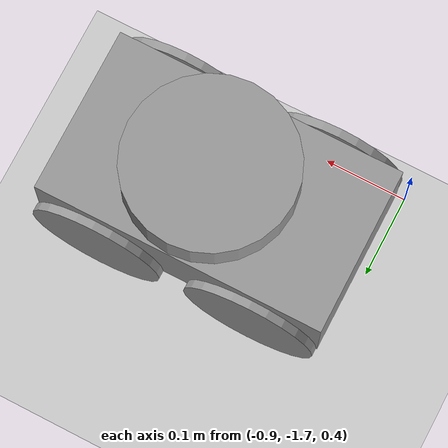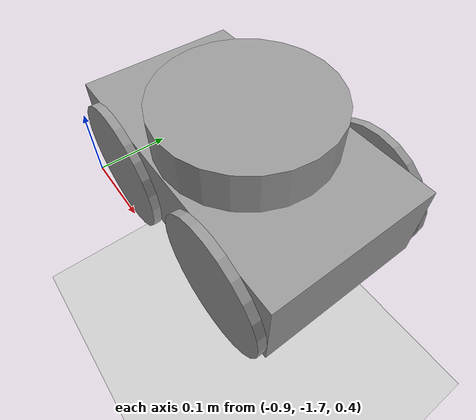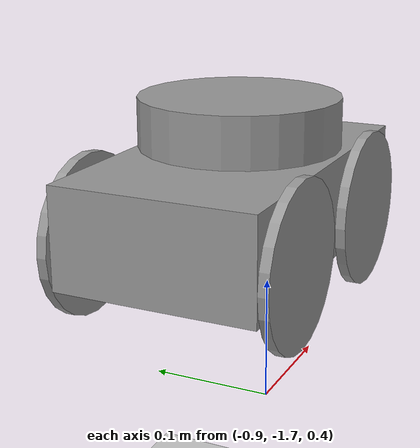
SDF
<sdf version="1.6">
 <world name="default">
  <model name="ground_plane">
   <static>1</static>
   <link name="link">
    <collision name="collision">
     <geometry><plane><normal>0 0 1</normal><size>100 100</size></plane></geometry>
     <surface><friction><ode><mu>100</mu><mu2>50</mu2></ode></friction></surface>
    </collision>
    <visual name="visual">
     <cast_shadows>0</cast_shadows>
     <geometry><plane><normal>0 0 1</normal><size>100 100</size></plane></geometry>
     <material>
      <script><uri>file://media/materials/scripts/gazebo.material</uri><name>Gazebo/Grey</name></script>
     </material>
    </visual>
   </link>
  </model>
  <model name="Recon01">
   <link name="link_0">
    <pose>-0.001667 -0.001667 0 0 -0 0</pose>
    <inertial>
     <mass>1</mass>
     <inertia>
      <ixx>0.166667</ixx>
      <ixy>0</ixy>
      <ixz>0</ixz>
      <iyy>0.166667</iyy>
      <iyz>0</iyz>
      <izz>0.166667</izz>
     </inertia>
    </inertial>
    <visual name="visual">
     <geometry><box><size>0.35 0.2 0.1</size></box></geometry>
     <material>
      <lighting>1</lighting>
      <script><uri>file://media/materials/scripts/gazebo.material</uri><name>Gazebo/Grey</name></script>
      <ambient>0.3 0.3 0.3 1</ambient>
      <diffuse>0.7 0.7 0.7 1</diffuse>
      <specular>0.01 0.01 0.01 1</specular>
      <emissive>0 0 0 1</emissive>
      <shader type="vertex"><normal_map>__default__</normal_map></shader>
     </material>
    </visual>
    <collision name="collision">
     <geometry><box><size>0.35 0.2 0.1</size></box></geometry>
     <surface>
      <friction>
       <ode><mu>1</mu><mu2>1</mu2><fdir1>0 0 0</fdir1><slip1>0</slip1><slip2>0</slip2></ode>
       <torsional>
        <coefficient>1</coefficient>
        <patch_radius>0</patch_radius>
        <surface_radius>0</surface_radius>
        <use_patch_radius>1</use_patch_radius>
        <ode><slip>0</slip></ode>
       </torsional>
      </friction>
      <bounce><restitution_coefficient>0</restitution_coefficient><threshold>1e+06</threshold></bounce>
      <contact>
       <collide_without_contact>0</collide_without_contact>
       <collide_without_contact_bitmask>1</collide_without_contact_bitmask>
       <collide_bitmask>1</collide_bitmask>
       <ode>
        <soft_cfm>0</soft_cfm>
        <soft_erp>0.2</soft_erp>
        <kp>1e+13</kp>
        <kd>1</kd>
        <max_vel>0.01</max_vel>
        <min_depth>0</min_depth>
       </ode>
       <bullet>
        <split_impulse>1</split_impulse>
        <split_impulse_penetration_threshold>-0.01</split_impulse_penetration_threshold>
        <soft_cfm>0</soft_cfm>
        <soft_erp>0.2</soft_erp>
        <kp>1e+13</kp>
        <kd>1</kd>
       </bullet>
      </contact>
     </surface>
    </collision>
   </link>
   <link name="link_1">
    <pose>-0.096667 0.108333 -0.02 1.5708 -0 0</pose>
    <inertial>
     <mass>1</mass>
     <inertia><ixx>0.145833</ixx><ixy>0</ixy><ixz>0</ixz><iyy>0.145833</iyy><iyz>0</iyz><izz>0.125</izz></inertia>
    </inertial>
    <visual name="visual">
     <geometry><cylinder><radius>0.08</radius><length>0.01</length></cylinder></geometry>
     <material>
      <lighting>1</lighting>
      <script><uri>file://media/materials/scripts/gazebo.material</uri><name>Gazebo/Grey</name></script>
      <ambient>0.3 0.3 0.3 1</ambient>
      <diffuse>0.7 0.7 0.7 1</diffuse>
      <specular>0.01 0.01 0.01 1</specular>
      <emissive>0 0 0 1</emissive>
      <shader type="vertex"><normal_map>__default__</normal_map></shader>
     </material>
    </visual>
    <collision name="collision">
     <geometry><cylinder><radius>0.08</radius><length>0.01</length></cylinder></geometry>
     <surface>
      <friction>
       <ode><mu>1</mu><mu2>1</mu2><fdir1>0 0 0</fdir1><slip1>0</slip1><slip2>0</slip2></ode>
       <torsional>
        <coefficient>1</coefficient>
        <patch_radius>0</patch_radius>
        <surface_radius>0</surface_radius>
        <use_patch_radius>1</use_patch_radius>
        <ode><slip>0</slip></ode>
       </torsional>
      </friction>
      <bounce><restitution_coefficient>0</restitution_coefficient><threshold>1e+06</threshold></bounce>
      <contact>
       <collide_without_contact>0</collide_without_contact>
       <collide_without_contact_bitmask>1</collide_without_contact_bitmask>
       <collide_bitmask>1</collide_bitmask>
       <ode>
        <soft_cfm>0</soft_cfm>
        <soft_erp>0.2</soft_erp>
        <kp>1e+13</kp>
        <kd>1</kd>
        <max_vel>0.01</max_vel>
        <min_depth>0</min_depth>
       </ode>
       <bullet>
        <split_impulse>1</split_impulse>
        <split_impulse_penetration_threshold>-0.01</split_impulse_penetration_threshold>
        <soft_cfm>0</soft_cfm>
        <soft_erp>0.2</soft_erp>
        <kp>1e+13</kp>
        <kd>1</kd>
       </bullet>
      </contact>
     </surface>
    </collision>
   </link>
   <link name="link_1_clone">
    <pose>0.093333 0.108333 -0.02 1.5708 -0 0</pose>
    <inertial>
     <mass>1</mass>
     <inertia><ixx>0.145833</ixx><ixy>0</ixy><ixz>0</ixz><iyy>0.145833</iyy><iyz>0</iyz><izz>0.125</izz></inertia>
    </inertial>
    <visual name="visual">
     <geometry><cylinder><radius>0.08</radius><length>0.01</length></cylinder></geometry>
     <material>
      <lighting>1</lighting>
      <script><uri>file://media/materials/scripts/gazebo.material</uri><name>Gazebo/Grey</name></script>
      <ambient>0.3 0.3 0.3 1</ambient>
      <diffuse>0.7 0.7 0.7 1</diffuse>
      <specular>0.01 0.01 0.01 1</specular>
      <emissive>0 0 0 1</emissive>
      <shader type="vertex"><normal_map>__default__</normal_map></shader>
     </material>
    </visual>
    <collision name="collision">
     <geometry><cylinder><radius>0.08</radius><length>0.01</length></cylinder></geometry>
     <surface>
      <friction>
       <ode><mu>1</mu><mu2>1</mu2><fdir1>0 0 0</fdir1><slip1>0</slip1><slip2>0</slip2></ode>
       <torsional>
        <coefficient>1</coefficient>
        <patch_radius>0</patch_radius>
        <surface_radius>0</surface_radius>
        <use_patch_radius>1</use_patch_radius>
        <ode><slip>0</slip></ode>
       </torsional>
      </friction>
      <bounce><restitution_coefficient>0</restitution_coefficient><threshold>1e+06</threshold></bounce>
      <contact>
       <collide_without_contact>0</collide_without_contact>
       <collide_without_contact_bitmask>1</collide_without_contact_bitmask>
       <collide_bitmask>1</collide_bitmask>
       <ode>
        <soft_cfm>0</soft_cfm>
        <soft_erp>0.2</soft_erp>
        <kp>1e+13</kp>
        <kd>1</kd>
        <max_vel>0.01</max_vel>
        <min_depth>0</min_depth>
       </ode>
       <bullet>
        <split_impulse>1</split_impulse>
        <split_impulse_penetration_threshold>-0.01</split_impulse_penetration_threshold>
        <soft_cfm>0</soft_cfm>
        <soft_erp>0.2</soft_erp>
        <kp>1e+13</kp>
        <kd>1</kd>
       </bullet>
      </contact>
     </surface>
    </collision>
   </link>
   <link name="link_1_clone_0">
    <pose>-0.096667 -0.106667 -0.02 1.5708 -0 0</pose>
    <inertial>
     <mass>1</mass>
     <inertia><ixx>0.145833</ixx><ixy>0</ixy><ixz>0</ixz><iyy>0.145833</iyy><iyz>0</iyz><izz>0.125</izz></inertia>
    </inertial>
    <visual name="visual">
     <geometry><cylinder><radius>0.08</radius><length>0.01</length></cylinder></geometry>
     <material>
      <lighting>1</lighting>
      <script><uri>file://media/materials/scripts/gazebo.material</uri><name>Gazebo/Grey</name></script>
      <ambient>0.3 0.3 0.3 1</ambient>
      <diffuse>0.7 0.7 0.7 1</diffuse>
      <specular>0.01 0.01 0.01 1</specular>
      <emissive>0 0 0 1</emissive>
      <shader type="vertex"><normal_map>__default__</normal_map></shader>
     </material>
    </visual>
    <collision name="collision">
     <geometry><cylinder><radius>0.08</radius><length>0.01</length></cylinder></geometry>
     <surface>
      <friction>
       <ode><mu>1</mu><mu2>1</mu2><fdir1>0 0 0</fdir1><slip1>0</slip1><slip2>0</slip2></ode>
       <torsional>
        <coefficient>1</coefficient>
        <patch_radius>0</patch_radius>
        <surface_radius>0</surface_radius>
        <use_patch_radius>1</use_patch_radius>
        <ode><slip>0</slip></ode>
       </torsional>
      </friction>
      <bounce><restitution_coefficient>0</restitution_coefficient><threshold>1e+06</threshold></bounce>
      <contact>
       <collide_without_contact>0</collide_without_contact>
       <collide_without_contact_bitmask>1</collide_without_contact_bitmask>
       <collide_bitmask>1</collide_bitmask>
       <ode>
        <soft_cfm>0</soft_cfm>
        <soft_erp>0.2</soft_erp>
        <kp>1e+13</kp>
        <kd>1</kd>
        <max_vel>0.01</max_vel>
        <min_depth>0</min_depth>
       </ode>
       <bullet>
        <split_impulse>1</split_impulse>
        <split_impulse_penetration_threshold>-0.01</split_impulse_penetration_threshold>
        <soft_cfm>0</soft_cfm>
        <soft_erp>0.2</soft_erp>
        <kp>1e+13</kp>
        <kd>1</kd>
       </bullet>
      </contact>
     </surface>
    </collision>
   </link>
   <link name="link_1_clone_1">
    <pose>0.093333 -0.106667 -0.02 1.5708 -0 0</pose>
    <inertial>
     <mass>1</mass>
     <inertia><ixx>0.145833</ixx><ixy>0</ixy><ixz>0</ixz><iyy>0.145833</iyy><iyz>0</iyz><izz>0.125</izz></inertia>
    </inertial>
    <visual name="visual">
     <geometry><cylinder><radius>0.08</radius><length>0.01</length></cylinder></geometry>
     <material>
      <lighting>1</lighting>
      <script><uri>file://media/materials/scripts/gazebo.material</uri><name>Gazebo/Grey</name></script>
      <ambient>0.3 0.3 0.3 1</ambient>
      <diffuse>0.7 0.7 0.7 1</diffuse>
      <specular>0.01 0.01 0.01 1</specular>
      <emissive>0 0 0 1</emissive>
      <shader type="vertex"><normal_map>__default__</normal_map></shader>
     </material>
    </visual>
    <collision name="collision">
     <geometry><cylinder><radius>0.08</radius><length>0.01</length></cylinder></geometry>
     <surface>
      <friction>
       <ode><mu>1</mu><mu2>1</mu2><fdir1>0 0 0</fdir1><slip1>0</slip1><slip2>0</slip2></ode>
       <torsional>
        <coefficient>1</coefficient>
        <patch_radius>0</patch_radius>
        <surface_radius>0</surface_radius>
        <use_patch_radius>1</use_patch_radius>
        <ode><slip>0</slip></ode>
       </torsional>
      </friction>
      <bounce><restitution_coefficient>0</restitution_coefficient><threshold>1e+06</threshold></bounce>
      <contact>
       <collide_without_contact>0</collide_without_contact>
       <collide_without_contact_bitmask>1</collide_without_contact_bitmask>
       <collide_bitmask>1</collide_bitmask>
       <ode>
        <soft_cfm>0</soft_cfm>
        <soft_erp>0.2</soft_erp>
        <kp>1e+13</kp>
        <kd>1</kd>
        <max_vel>0.01</max_vel>
        <min_depth>0</min_depth>
       </ode>
       <bullet>
        <split_impulse>1</split_impulse>
        <split_impulse_penetration_threshold>-0.01</split_impulse_penetration_threshold>
        <soft_cfm>0</soft_cfm>
        <soft_erp>0.2</soft_erp>
        <kp>1e+13</kp>
        <kd>1</kd>
       </bullet>
      </contact>
     </surface>
    </collision>
   </link>
   <link name="link_2">
    <pose>0.008333 -0.001667 0.08 0 -0 0</pose>
    <inertial>
     <mass>1</mass>
     <inertia><ixx>0.145833</ixx><ixy>0</ixy><ixz>0</ixz><iyy>0.145833</iyy><iyz>0</iyz><izz>0.125</izz></inertia>
    </inertial>
    <visual name="visual">
     <geometry><cylinder><radius>0.1</radius><length>0.05</length></cylinder></geometry>
     <material>
      <lighting>1</lighting>
      <script><uri>file://media/materials/scripts/gazebo.material</uri><name>Gazebo/Grey</name></script>
      <ambient>0.3 0.3 0.3 1</ambient>
      <diffuse>0.7 0.7 0.7 1</diffuse>
      <specular>0.01 0.01 0.01 1</specular>
      <emissive>0 0 0 1</emissive>
      <shader type="vertex"><normal_map>__default__</normal_map></shader>
     </material>
    </visual>
    <collision name="collision">
     <geometry><cylinder><radius>0.08</radius><length>0.05</length></cylinder></geometry>
     <surface>
      <friction>
       <ode><mu>1</mu><mu2>1</mu2><fdir1>0 0 0</fdir1><slip1>0</slip1><slip2>0</slip2></ode>
       <torsional>
        <coefficient>1</coefficient>
        <patch_radius>0</patch_radius>
        <surface_radius>0</surface_radius>
        <use_patch_radius>1</use_patch_radius>
        <ode><slip>0</slip></ode>
       </torsional>
      </friction>
      <bounce><restitution_coefficient>0</restitution_coefficient><threshold>1e+06</threshold></bounce>
      <contact>
       <collide_without_contact>0</collide_without_contact>
       <collide_without_contact_bitmask>1</collide_without_contact_bitmask>
       <collide_bitmask>1</collide_bitmask>
       <ode>
        <soft_cfm>0</soft_cfm>
        <soft_erp>0.2</soft_erp>
        <kp>1e+13</kp>
        <kd>1</kd>
        <max_vel>0.01</max_vel>
        <min_depth>0</min_depth>
       </ode>
       <bullet>
        <split_impulse>1</split_impulse>
        <split_impulse_penetration_threshold>-0.01</split_impulse_penetration_threshold>
        <soft_cfm>0</soft_cfm>
        <soft_erp>0.2</soft_erp>
        <kp>1e+13</kp>
        <kd>1</kd>
       </bullet>
      </contact>
     </surface>
    </collision>
   </link>
   <joint name="link_0_JOINT_10" type="revolute">
    <parent>link_0</parent>
    <child>link_2</child>
    <axis>
     <xyz>1 0 0</xyz>
     <use_parent_model_frame>0</use_parent_model_frame>
     <limit>
      <lower>-1.79769e+308</lower>
      <upper>1.79769e+308</upper>
      <effort>-1</effort>
      <velocity>-1</velocity>
     </limit>
     <dynamics>
      <spring_reference>0</spring_reference>
      <spring_stiffness>0</spring_stiffness>
      <damping>0</damping>
     </dynamics>
    </axis>
    <physics>
     <ode><limit><cfm>0</cfm><erp>0.2</erp></limit><suspension><cfm>0</cfm><erp>0.2</erp></suspension></ode>
    </physics>
   </joint>
   <joint name="link_0_JOINT_2" type="revolute">
    <parent>link_0</parent>
    <child>link_1_clone_1</child>
    <axis>
     <xyz>1 0 0</xyz>
     <use_parent_model_frame>0</use_parent_model_frame>
     <limit>
      <lower>-1.79769e+308</lower>
      <upper>1.79769e+308</upper>
      <effort>-1</effort>
      <velocity>-1</velocity>
     </limit>
     <dynamics>
      <spring_reference>0</spring_reference>
      <spring_stiffness>0</spring_stiffness>
      <damping>0</damping>
      <friction>0</friction>
     </dynamics>
    </axis>
    <physics>
     <ode><limit><cfm>0</cfm><erp>0.2</erp></limit><suspension><cfm>0</cfm><erp>0.2</erp></suspension></ode>
    </physics>
   </joint>
   <joint name="link_0_JOINT_3" type="revolute">
    <parent>link_0</parent>
    <child>link_1_clone_0</child>
    <axis>
     <xyz>1 0 0</xyz>
     <use_parent_model_frame>0</use_parent_model_frame>
     <limit>
      <lower>-1.79769e+308</lower>
      <upper>1.79769e+308</upper>
      <effort>-1</effort>
      <velocity>-1</velocity>
     </limit>
     <dynamics>
      <spring_reference>0</spring_reference>
      <spring_stiffness>0</spring_stiffness>
      <damping>0</damping>
     </dynamics>
    </axis>
    <physics>
     <ode><limit><cfm>0</cfm><erp>0.2</erp></limit><suspension><cfm>0</cfm><erp>0.2</erp></suspension></ode>
    </physics>
   </joint>
   <joint name="link_0_JOINT_8" type="revolute">
    <parent>link_0</parent>
    <child>link_1_clone</child>
    <axis>
     <xyz>1 0 0</xyz>
     <use_parent_model_frame>0</use_parent_model_frame>
     <limit>
      <lower>-1.79769e+308</lower>
      <upper>1.79769e+308</upper>
      <effort>-1</effort>
      <velocity>-1</velocity>
     </limit>
     <dynamics>
      <spring_reference>0</spring_reference>
      <spring_stiffness>0</spring_stiffness>
      <damping>0</damping>
     </dynamics>
    </axis>
    <physics>
     <ode><limit><cfm>0</cfm><erp>0.2</erp></limit><suspension><cfm>0</cfm><erp>0.2</erp></suspension></ode>
    </physics>
   </joint>
   <joint name="link_0_JOINT_9" type="revolute">
    <parent>link_0</parent>
    <child>link_1</child>
    <axis>
     <xyz>1 0 0</xyz>
     <use_parent_model_frame>0</use_parent_model_frame>
     <limit>
      <lower>-1.79769e+308</lower>
      <upper>1.79769e+308</upper>
      <effort>-1</effort>
      <velocity>-1</velocity>
     </limit>
     <dynamics>
      <spring_reference>0</spring_reference>
      <spring_stiffness>0</spring_stiffness>
      <damping>0</damping>
     </dynamics>
    </axis>
    <physics>
     <ode><limit><cfm>0</cfm><erp>0.2</erp></limit><suspension><cfm>0</cfm><erp>0.2</erp></suspension></ode>
    </physics>
   </joint>
   <static>0</static>
   <pose>-0.714552 -1.58603 0.5 0 -0 0</pose>
  </model>
 </world>
</sdf>
